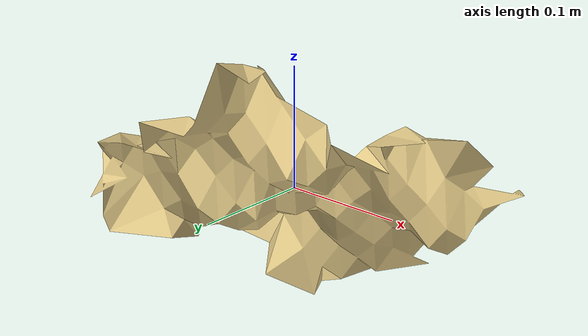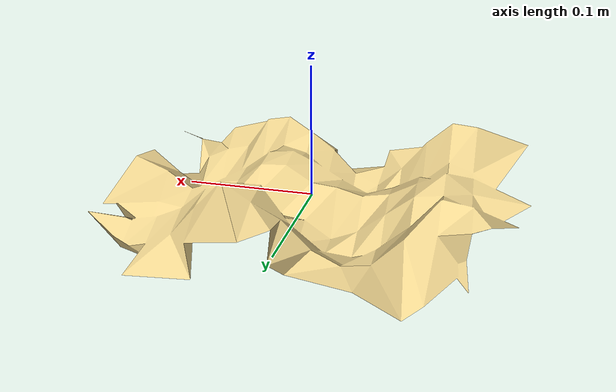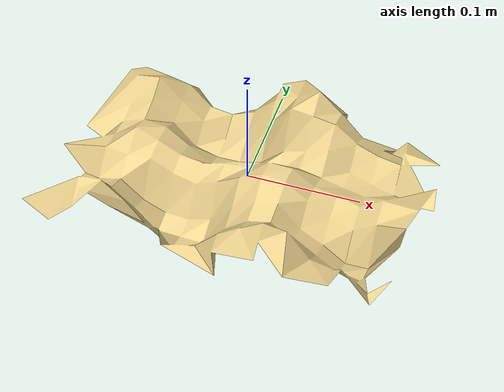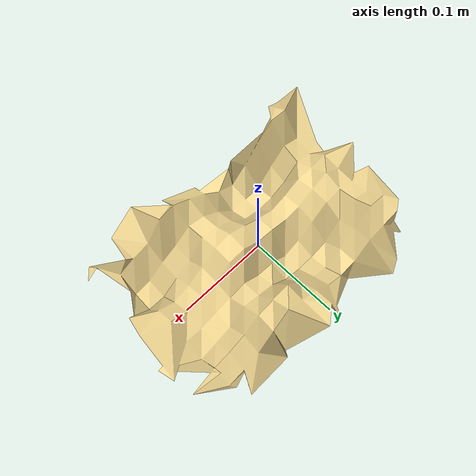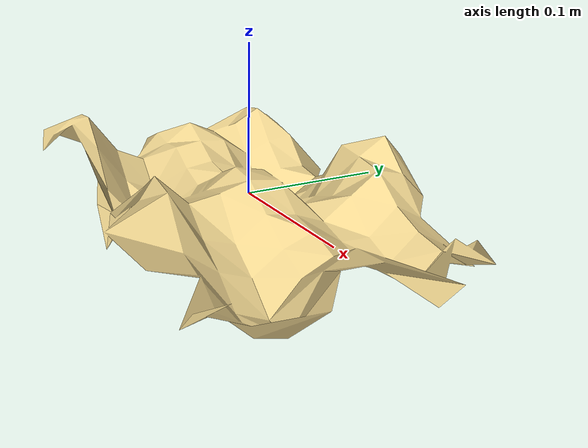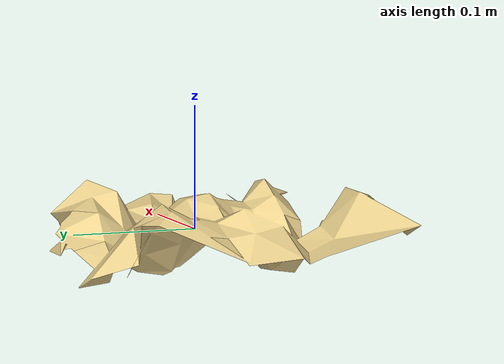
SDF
<?xml version="1.0"?>
<sdf version="1.6">
  <model name="waste_paper_crumpled">
    <static>false</static>
    <allow_auto_disable>false</allow_auto_disable>

    <link name="link">
      <pose>0 0 0 0 0 0</pose>

      <inertial>
        <mass>0.025</mass>
        <inertia>
          <ixx>0.0008</ixx>
          <iyy>0.0008</iyy>
          <izz>0.0008</izz>
          <ixy>0</ixy>
          <ixz>0</ixz>
          <iyz>0</iyz>
        </inertia>
      </inertial>

      <!--
        Simplified collision is used for stability.
        Visual mesh gives realistic shape, collision box keeps Gazebo physics robust.
      -->
      <collision name="collision">
        <geometry>
          <box>
            <size>0.3 0.22 0.04</size>
          </box>
        </geometry>
        <surface>
          <friction>
            <ode>
              <mu>8.0</mu>
              <mu2>8.0</mu2>
            </ode>
          </friction>
        </surface>
      </collision>

      <visual name="visual">
        <geometry>
          <mesh>
            <uri>model://realistic_waste/waste_paper_crumpled/meshes/paper_crumpled.obj</uri>
            <scale>1 1 1</scale>
          </mesh>
        </geometry>
        <material>
          <ambient>0.92 0.82 0.55 1.0</ambient>
          <diffuse>0.92 0.82 0.55 1.0</diffuse>
          <specular>0.15 0.15 0.15 1</specular>
        </material>
      </visual>
    </link>
  </model>
</sdf>
